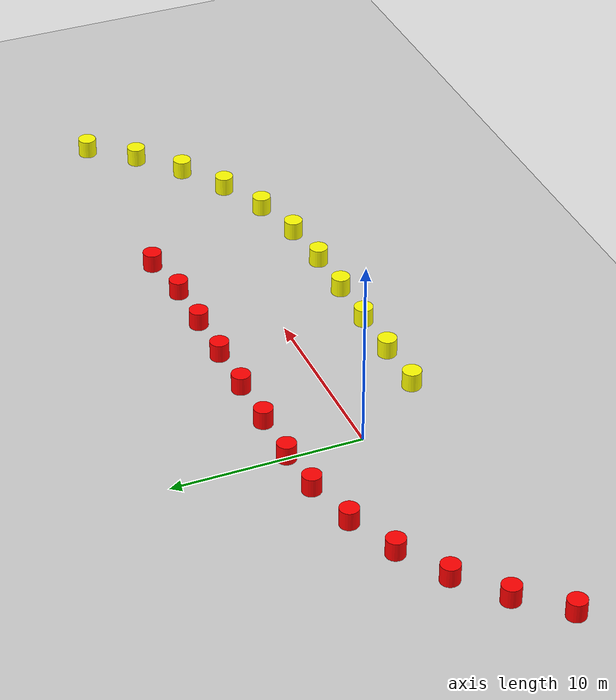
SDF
<sdf version="1.9">
 <world name="empty">
  <model name="ground_plane">
   <static>true</static>
   <link name="link">
    <collision name="collision">
     <geometry><plane><normal>0 0 1</normal><size>1000 1000</size></plane></geometry>
    </collision>
    <visual name="visual">
     <geometry><plane><normal>0 0 1</normal><size>1000 1000</size></plane></geometry>
     <material>
      <ambient>0.8 0.8 0.8 1</ambient>
      <diffuse>0.8 0.8 0.8 1</diffuse>
      <specular>0.8 0.8 0.8 1</specular>
     </material>
    </visual>
    <inertial>
     <mass>1</mass>
     <inertia><ixx>1</ixx><ixy>0</ixy><ixz>0</ixz><iyy>1</iyy><iyz>0</iyz><izz>1</izz></inertia>
    </inertial>
   </link>
  </model>
  <model name="red_cone_0">
   <pose>-2.4492935982947064e-16 4.0 0.5 0 -0 0</pose>
   <link name="cylinder_link">
    <inertial>
     <inertia>
      <ixx>0.14580000000000001</ixx>
      <ixy>0</ixy>
      <ixz>0</ixz>
      <iyy>0.14580000000000001</iyy>
      <iyz>0</iyz>
      <izz>0.125</izz>
     </inertia>
     <mass>1</mass>
    </inertial>
    <collision name="cylinder_collision">
     <geometry><cylinder><radius>0.5</radius><length>1</length></cylinder></geometry>
    </collision>
    <visual name="cylinder_visual">
     <geometry><cylinder><radius>0.5</radius><length>1</length></cylinder></geometry>
     <material><ambient>1 0 0 1</ambient><diffuse>1 0 0 1</diffuse><specular>1 1 1 1</specular></material>
    </visual>
   </link>
   <static>false</static>
  </model>
  <model name="red_cone_1">
   <pose>2.9999999999999996 4.0 0.5 0 -0 0</pose>
   <link name="cylinder_link">
    <inertial>
     <inertia>
      <ixx>0.14580000000000001</ixx>
      <ixy>0</ixy>
      <ixz>0</ixz>
      <iyy>0.14580000000000001</iyy>
      <iyz>0</iyz>
      <izz>0.125</izz>
     </inertia>
     <mass>1</mass>
    </inertial>
    <collision name="cylinder_collision">
     <geometry><cylinder><radius>0.5</radius><length>1</length></cylinder></geometry>
    </collision>
    <visual name="cylinder_visual">
     <geometry><cylinder><radius>0.5</radius><length>1</length></cylinder></geometry>
     <material><ambient>1 0 0 1</ambient><diffuse>1 0 0 1</diffuse><specular>1 1 1 1</specular></material>
    </visual>
   </link>
   <static>false</static>
  </model>
  <model name="red_cone_2">
   <pose>6.0 4.0 0.5 0 -0 0</pose>
   <link name="cylinder_link">
    <inertial>
     <inertia>
      <ixx>0.14580000000000001</ixx>
      <ixy>0</ixy>
      <ixz>0</ixz>
      <iyy>0.14580000000000001</iyy>
      <iyz>0</iyz>
      <izz>0.125</izz>
     </inertia>
     <mass>1</mass>
    </inertial>
    <collision name="cylinder_collision">
     <geometry><cylinder><radius>0.5</radius><length>1</length></cylinder></geometry>
    </collision>
    <visual name="cylinder_visual">
     <geometry><cylinder><radius>0.5</radius><length>1</length></cylinder></geometry>
     <material><ambient>1 0 0 1</ambient><diffuse>1 0 0 1</diffuse><specular>1 1 1 1</specular></material>
    </visual>
   </link>
   <static>false</static>
  </model>
  <model name="red_cone_3">
   <pose>9.0 4.000000000000001 0.5 0 -0 0</pose>
   <link name="cylinder_link">
    <inertial>
     <inertia>
      <ixx>0.14580000000000001</ixx>
      <ixy>0</ixy>
      <ixz>0</ixz>
      <iyy>0.14580000000000001</iyy>
      <iyz>0</iyz>
      <izz>0.125</izz>
     </inertia>
     <mass>1</mass>
    </inertial>
    <collision name="cylinder_collision">
     <geometry><cylinder><radius>0.5</radius><length>1</length></cylinder></geometry>
    </collision>
    <visual name="cylinder_visual">
     <geometry><cylinder><radius>0.5</radius><length>1</length></cylinder></geometry>
     <material><ambient>1 0 0 1</ambient><diffuse>1 0 0 1</diffuse><specular>1 1 1 1</specular></material>
    </visual>
   </link>
   <static>false</static>
  </model>
  <model name="red_cone_4">
   <pose>12.0 4.000000000000001 0.5 0 -0 0</pose>
   <link name="cylinder_link">
    <inertial>
     <inertia>
      <ixx>0.14580000000000001</ixx>
      <ixy>0</ixy>
      <ixz>0</ixz>
      <iyy>0.14580000000000001</iyy>
      <iyz>0</iyz>
      <izz>0.125</izz>
     </inertia>
     <mass>1</mass>
    </inertial>
    <collision name="cylinder_collision">
     <geometry><cylinder><radius>0.5</radius><length>1</length></cylinder></geometry>
    </collision>
    <visual name="cylinder_visual">
     <geometry><cylinder><radius>0.5</radius><length>1</length></cylinder></geometry>
     <material><ambient>1 0 0 1</ambient><diffuse>1 0 0 1</diffuse><specular>1 1 1 1</specular></material>
    </visual>
   </link>
   <static>false</static>
  </model>
  <model name="red_cone_5">
   <pose>15.0 4.000000000000001 0.5 0 -0 0</pose>
   <link name="cylinder_link">
    <inertial>
     <inertia>
      <ixx>0.14580000000000001</ixx>
      <ixy>0</ixy>
      <ixz>0</ixz>
      <iyy>0.14580000000000001</iyy>
      <iyz>0</iyz>
      <izz>0.125</izz>
     </inertia>
     <mass>1</mass>
    </inertial>
    <collision name="cylinder_collision">
     <geometry><cylinder><radius>0.5</radius><length>1</length></cylinder></geometry>
    </collision>
    <visual name="cylinder_visual">
     <geometry><cylinder><radius>0.5</radius><length>1</length></cylinder></geometry>
     <material><ambient>1 0 0 1</ambient><diffuse>1 0 0 1</diffuse><specular>1 1 1 1</specular></material>
    </visual>
   </link>
   <static>false</static>
  </model>
  <model name="red_cone_6">
   <pose>15.0 4.0 0.5 0 -0 0</pose>
   <link name="cylinder_link">
    <inertial>
     <inertia>
      <ixx>0.14580000000000001</ixx>
      <ixy>0</ixy>
      <ixz>0</ixz>
      <iyy>0.14580000000000001</iyy>
      <iyz>0</iyz>
      <izz>0.125</izz>
     </inertia>
     <mass>1</mass>
    </inertial>
    <collision name="cylinder_collision">
     <geometry><cylinder><radius>0.5</radius><length>1</length></cylinder></geometry>
    </collision>
    <visual name="cylinder_visual">
     <geometry><cylinder><radius>0.5</radius><length>1</length></cylinder></geometry>
     <material><ambient>1 0 0 1</ambient><diffuse>1 0 0 1</diffuse><specular>1 1 1 1</specular></material>
    </visual>
   </link>
   <static>false</static>
  </model>
  <model name="red_cone_7">
   <pose>17.962947982891585 4.406561500122885 0.5 0 -0 0</pose>
   <link name="cylinder_link">
    <inertial>
     <inertia>
      <ixx>0.14580000000000001</ixx>
      <ixy>0</ixy>
      <ixz>0</ixz>
      <iyy>0.14580000000000001</iyy>
      <iyz>0</iyz>
      <izz>0.125</izz>
     </inertia>
     <mass>1</mass>
    </inertial>
    <collision name="cylinder_collision">
     <geometry><cylinder><radius>0.5</radius><length>1</length></cylinder></geometry>
    </collision>
    <visual name="cylinder_visual">
     <geometry><cylinder><radius>0.5</radius><length>1</length></cylinder></geometry>
     <material><ambient>1 0 0 1</ambient><diffuse>1 0 0 1</diffuse><specular>1 1 1 1</specular></material>
    </visual>
   </link>
   <static>false</static>
  </model>
  <model name="red_cone_105">
   <pose>-15.242882581717192 -3.6574019466445797 0.5 0 -0 0</pose>
   <link name="cylinder_link">
    <inertial>
     <inertia>
      <ixx>0.14580000000000001</ixx>
      <ixy>0</ixy>
      <ixz>0</ixz>
      <iyy>0.14580000000000001</iyy>
      <iyz>0</iyz>
      <izz>0.125</izz>
     </inertia>
     <mass>1</mass>
    </inertial>
    <collision name="cylinder_collision">
     <geometry><cylinder><radius>0.5</radius><length>1</length></cylinder></geometry>
    </collision>
    <visual name="cylinder_visual">
     <geometry><cylinder><radius>0.5</radius><length>1</length></cylinder></geometry>
     <material><ambient>1 0 0 1</ambient><diffuse>1 0 0 1</diffuse><specular>1 1 1 1</specular></material>
    </visual>
   </link>
   <static>false</static>
  </model>
  <model name="red_cone_106">
   <pose>-13.269764535252907 -1.401715211875299 0.5 0 -0 0</pose>
   <link name="cylinder_link">
    <inertial>
     <inertia>
      <ixx>0.14580000000000001</ixx>
      <ixy>0</ixy>
      <ixz>0</ixz>
      <iyy>0.14580000000000001</iyy>
      <iyz>0</iyz>
      <izz>0.125</izz>
     </inertia>
     <mass>1</mass>
    </inertial>
    <collision name="cylinder_collision">
     <geometry><cylinder><radius>0.5</radius><length>1</length></cylinder></geometry>
    </collision>
    <visual name="cylinder_visual">
     <geometry><cylinder><radius>0.5</radius><length>1</length></cylinder></geometry>
     <material><ambient>1 0 0 1</ambient><diffuse>1 0 0 1</diffuse><specular>1 1 1 1</specular></material>
    </visual>
   </link>
   <static>false</static>
  </model>
  <model name="red_cone_107">
   <pose>-10.966508073130715 0.5156598532565901 0.5 0 -0 0</pose>
   <link name="cylinder_link">
    <inertial>
     <inertia>
      <ixx>0.14580000000000001</ixx>
      <ixy>0</ixy>
      <ixz>0</ixz>
      <iyy>0.14580000000000001</iyy>
      <iyz>0</iyz>
      <izz>0.125</izz>
     </inertia>
     <mass>1</mass>
    </inertial>
    <collision name="cylinder_collision">
     <geometry><cylinder><radius>0.5</radius><length>1</length></cylinder></geometry>
    </collision>
    <visual name="cylinder_visual">
     <geometry><cylinder><radius>0.5</radius><length>1</length></cylinder></geometry>
     <material><ambient>1 0 0 1</ambient><diffuse>1 0 0 1</diffuse><specular>1 1 1 1</specular></material>
    </visual>
   </link>
   <static>false</static>
  </model>
  <model name="red_cone_108">
   <pose>-8.390415903114446 2.0470208826282494 0.5 0 -0 0</pose>
   <link name="cylinder_link">
    <inertial>
     <inertia>
      <ixx>0.14580000000000001</ixx>
      <ixy>0</ixy>
      <ixz>0</ixz>
      <iyy>0.14580000000000001</iyy>
      <iyz>0</iyz>
      <izz>0.125</izz>
     </inertia>
     <mass>1</mass>
    </inertial>
    <collision name="cylinder_collision">
     <geometry><cylinder><radius>0.5</radius><length>1</length></cylinder></geometry>
    </collision>
    <visual name="cylinder_visual">
     <geometry><cylinder><radius>0.5</radius><length>1</length></cylinder></geometry>
     <material><ambient>1 0 0 1</ambient><diffuse>1 0 0 1</diffuse><specular>1 1 1 1</specular></material>
    </visual>
   </link>
   <static>false</static>
  </model>
  <model name="red_cone_109">
   <pose>-5.605578611388875 3.154269151677216 0.5 0 -0 0</pose>
   <link name="cylinder_link">
    <inertial>
     <inertia>
      <ixx>0.14580000000000001</ixx>
      <ixy>0</ixy>
      <ixz>0</ixz>
      <iyy>0.14580000000000001</iyy>
      <iyz>0</iyz>
      <izz>0.125</izz>
     </inertia>
     <mass>1</mass>
    </inertial>
    <collision name="cylinder_collision">
     <geometry><cylinder><radius>0.5</radius><length>1</length></cylinder></geometry>
    </collision>
    <visual name="cylinder_visual">
     <geometry><cylinder><radius>0.5</radius><length>1</length></cylinder></geometry>
     <material><ambient>1 0 0 1</ambient><diffuse>1 0 0 1</diffuse><specular>1 1 1 1</specular></material>
    </visual>
   </link>
   <static>false</static>
  </model>
  <model name="red_cone_110">
   <pose>-2.681280153137478 3.80985743540845 0.5 0 -0 0</pose>
   <link name="cylinder_link">
    <inertial>
     <inertia>
      <ixx>0.14580000000000001</ixx>
      <ixy>0</ixy>
      <ixz>0</ixz>
      <iyy>0.14580000000000001</iyy>
      <iyz>0</iyz>
      <izz>0.125</izz>
     </inertia>
     <mass>1</mass>
    </inertial>
    <collision name="cylinder_collision">
     <geometry><cylinder><radius>0.5</radius><length>1</length></cylinder></geometry>
    </collision>
    <visual name="cylinder_visual">
     <geometry><cylinder><radius>0.5</radius><length>1</length></cylinder></geometry>
     <material><ambient>1 0 0 1</ambient><diffuse>1 0 0 1</diffuse><specular>1 1 1 1</specular></material>
    </visual>
   </link>
   <static>false</static>
  </model>
  <model name="yellow_cone_1">
   <pose>3.0000000000000004 -4.0 0.5 0 -0 0</pose>
   <link name="cylinder_link">
    <inertial>
     <inertia>
      <ixx>0.14580000000000001</ixx>
      <ixy>0</ixy>
      <ixz>0</ixz>
      <iyy>0.14580000000000001</iyy>
      <iyz>0</iyz>
      <izz>0.125</izz>
     </inertia>
     <mass>1</mass>
    </inertial>
    <collision name="cylinder_collision">
     <geometry><cylinder><radius>0.5</radius><length>1</length></cylinder></geometry>
    </collision>
    <visual name="cylinder_visual">
     <geometry><cylinder><radius>0.5</radius><length>1</length></cylinder></geometry>
     <material><ambient>1 1 0 1</ambient><diffuse>1 1 0 1</diffuse><specular>1 1 1 1</specular></material>
    </visual>
   </link>
   <static>false</static>
  </model>
  <model name="yellow_cone_2">
   <pose>6.0 -3.9999999999999996 0.5 0 -0 0</pose>
   <link name="cylinder_link">
    <inertial>
     <inertia>
      <ixx>0.14580000000000001</ixx>
      <ixy>0</ixy>
      <ixz>0</ixz>
      <iyy>0.14580000000000001</iyy>
      <iyz>0</iyz>
      <izz>0.125</izz>
     </inertia>
     <mass>1</mass>
    </inertial>
    <collision name="cylinder_collision">
     <geometry><cylinder><radius>0.5</radius><length>1</length></cylinder></geometry>
    </collision>
    <visual name="cylinder_visual">
     <geometry><cylinder><radius>0.5</radius><length>1</length></cylinder></geometry>
     <material><ambient>1 1 0 1</ambient><diffuse>1 1 0 1</diffuse><specular>1 1 1 1</specular></material>
    </visual>
   </link>
   <static>false</static>
  </model>
  <model name="yellow_cone_3">
   <pose>9.0 -3.9999999999999996 0.5 0 -0 0</pose>
   <link name="cylinder_link">
    <inertial>
     <inertia>
      <ixx>0.14580000000000001</ixx>
      <ixy>0</ixy>
      <ixz>0</ixz>
      <iyy>0.14580000000000001</iyy>
      <iyz>0</iyz>
      <izz>0.125</izz>
     </inertia>
     <mass>1</mass>
    </inertial>
    <collision name="cylinder_collision">
     <geometry><cylinder><radius>0.5</radius><length>1</length></cylinder></geometry>
    </collision>
    <visual name="cylinder_visual">
     <geometry><cylinder><radius>0.5</radius><length>1</length></cylinder></geometry>
     <material><ambient>1 1 0 1</ambient><diffuse>1 1 0 1</diffuse><specular>1 1 1 1</specular></material>
    </visual>
   </link>
   <static>false</static>
  </model>
  <model name="yellow_cone_4">
   <pose>12.0 -3.999999999999999 0.5 0 -0 0</pose>
   <link name="cylinder_link">
    <inertial>
     <inertia>
      <ixx>0.14580000000000001</ixx>
      <ixy>0</ixy>
      <ixz>0</ixz>
      <iyy>0.14580000000000001</iyy>
      <iyz>0</iyz>
      <izz>0.125</izz>
     </inertia>
     <mass>1</mass>
    </inertial>
    <collision name="cylinder_collision">
     <geometry><cylinder><radius>0.5</radius><length>1</length></cylinder></geometry>
    </collision>
    <visual name="cylinder_visual">
     <geometry><cylinder><radius>0.5</radius><length>1</length></cylinder></geometry>
     <material><ambient>1 1 0 1</ambient><diffuse>1 1 0 1</diffuse><specular>1 1 1 1</specular></material>
    </visual>
   </link>
   <static>false</static>
  </model>
  <model name="yellow_cone_5">
   <pose>15.0 -3.999999999999999 0.5 0 -0 0</pose>
   <link name="cylinder_link">
    <inertial>
     <inertia>
      <ixx>0.14580000000000001</ixx>
      <ixy>0</ixy>
      <ixz>0</ixz>
      <iyy>0.14580000000000001</iyy>
      <iyz>0</iyz>
      <izz>0.125</izz>
     </inertia>
     <mass>1</mass>
    </inertial>
    <collision name="cylinder_collision">
     <geometry><cylinder><radius>0.5</radius><length>1</length></cylinder></geometry>
    </collision>
    <visual name="cylinder_visual">
     <geometry><cylinder><radius>0.5</radius><length>1</length></cylinder></geometry>
     <material><ambient>1 1 0 1</ambient><diffuse>1 1 0 1</diffuse><specular>1 1 1 1</specular></material>
    </visual>
   </link>
   <static>false</static>
  </model>
  <model name="yellow_cone_6">
   <pose>15.000000000000002 -4.0 0.5 0 -0 0</pose>
   <link name="cylinder_link">
    <inertial>
     <inertia>
      <ixx>0.14580000000000001</ixx>
      <ixy>0</ixy>
      <ixz>0</ixz>
      <iyy>0.14580000000000001</iyy>
      <iyz>0</iyz>
      <izz>0.125</izz>
     </inertia>
     <mass>1</mass>
    </inertial>
    <collision name="cylinder_collision">
     <geometry><cylinder><radius>0.5</radius><length>1</length></cylinder></geometry>
    </collision>
    <visual name="cylinder_visual">
     <geometry><cylinder><radius>0.5</radius><length>1</length></cylinder></geometry>
     <material><ambient>1 1 0 1</ambient><diffuse>1 1 0 1</diffuse><specular>1 1 1 1</specular></material>
    </visual>
   </link>
   <static>false</static>
  </model>
  <model name="yellow_cone_7">
   <pose>17.987550155373256 -3.76364954024481 0.5 0 -0 0</pose>
   <link name="cylinder_link">
    <inertial>
     <inertia>
      <ixx>0.14580000000000001</ixx>
      <ixy>0</ixy>
      <ixz>0</ixz>
      <iyy>0.14580000000000001</iyy>
      <iyz>0</iyz>
      <izz>0.125</izz>
     </inertia>
     <mass>1</mass>
    </inertial>
    <collision name="cylinder_collision">
     <geometry><cylinder><radius>0.5</radius><length>1</length></cylinder></geometry>
    </collision>
    <visual name="cylinder_visual">
     <geometry><cylinder><radius>0.5</radius><length>1</length></cylinder></geometry>
     <material><ambient>1 1 0 1</ambient><diffuse>1 1 0 1</diffuse><specular>1 1 1 1</specular></material>
    </visual>
   </link>
   <static>false</static>
  </model>
  <model name="yellow_cone_8">
   <pose>20.900773063087126 -3.060478323066235 0.5 0 -0 0</pose>
   <link name="cylinder_link">
    <inertial>
     <inertia>
      <ixx>0.14580000000000001</ixx>
      <ixy>0</ixy>
      <ixz>0</ixz>
      <iyy>0.14580000000000001</iyy>
      <iyz>0</iyz>
      <izz>0.125</izz>
     </inertia>
     <mass>1</mass>
    </inertial>
    <collision name="cylinder_collision">
     <geometry><cylinder><radius>0.5</radius><length>1</length></cylinder></geometry>
    </collision>
    <visual name="cylinder_visual">
     <geometry><cylinder><radius>0.5</radius><length>1</length></cylinder></geometry>
     <material><ambient>1 1 0 1</ambient><diffuse>1 1 0 1</diffuse><specular>1 1 1 1</specular></material>
    </visual>
   </link>
   <static>false</static>
  </model>
  <model name="yellow_cone_9">
   <pose>23.66719066276187 -1.907980542197624 0.5 0 -0 0</pose>
   <link name="cylinder_link">
    <inertial>
     <inertia>
      <ixx>0.14580000000000001</ixx>
      <ixy>0</ixy>
      <ixz>0</ixz>
      <iyy>0.14580000000000001</iyy>
      <iyz>0</iyz>
      <izz>0.125</izz>
     </inertia>
     <mass>1</mass>
    </inertial>
    <collision name="cylinder_collision">
     <geometry><cylinder><radius>0.5</radius><length>1</length></cylinder></geometry>
    </collision>
    <visual name="cylinder_visual">
     <geometry><cylinder><radius>0.5</radius><length>1</length></cylinder></geometry>
     <material><ambient>1 1 0 1</ambient><diffuse>1 1 0 1</diffuse><specular>1 1 1 1</specular></material>
    </visual>
   </link>
   <static>false</static>
  </model>
  <model name="yellow_cone_10">
   <pose>26.217977262654543 -0.33482918504688364 0.5 0 -0 0</pose>
   <link name="cylinder_link">
    <inertial>
     <inertia>
      <ixx>0.14580000000000001</ixx>
      <ixy>0</ixy>
      <ixz>0</ixz>
      <iyy>0.14580000000000001</iyy>
      <iyz>0</iyz>
      <izz>0.125</izz>
     </inertia>
     <mass>1</mass>
    </inertial>
    <collision name="cylinder_collision">
     <geometry><cylinder><radius>0.5</radius><length>1</length></cylinder></geometry>
    </collision>
    <visual name="cylinder_visual">
     <geometry><cylinder><radius>0.5</radius><length>1</length></cylinder></geometry>
     <material><ambient>1 1 0 1</ambient><diffuse>1 1 0 1</diffuse><specular>1 1 1 1</specular></material>
    </visual>
   </link>
   <static>false</static>
  </model>
  <model name="yellow_cone_11">
   <pose>28.489671853752306 1.6198373224357656 0.5 0 -0 0</pose>
   <link name="cylinder_link">
    <inertial>
     <inertia>
      <ixx>0.14580000000000001</ixx>
      <ixy>0</ixy>
      <ixz>0</ixz>
      <iyy>0.14580000000000001</iyy>
      <iyz>0</iyz>
      <izz>0.125</izz>
     </inertia>
     <mass>1</mass>
    </inertial>
    <collision name="cylinder_collision">
     <geometry><cylinder><radius>0.5</radius><length>1</length></cylinder></geometry>
    </collision>
    <visual name="cylinder_visual">
     <geometry><cylinder><radius>0.5</radius><length>1</length></cylinder></geometry>
     <material><ambient>1 1 0 1</ambient><diffuse>1 1 0 1</diffuse><specular>1 1 1 1</specular></material>
    </visual>
   </link>
   <static>false</static>
  </model>
  <model name="yellow_cone_12">
   <pose>30.425756955946802 3.907388840491212 0.5 0 -0 0</pose>
   <link name="cylinder_link">
    <inertial>
     <inertia>
      <ixx>0.14580000000000001</ixx>
      <ixy>0</ixy>
      <ixz>0</ixz>
      <iyy>0.14580000000000001</iyy>
      <iyz>0</iyz>
      <izz>0.125</izz>
     </inertia>
     <mass>1</mass>
    </inertial>
    <collision name="cylinder_collision">
     <geometry><cylinder><radius>0.5</radius><length>1</length></cylinder></geometry>
    </collision>
    <visual name="cylinder_visual">
     <geometry><cylinder><radius>0.5</radius><length>1</length></cylinder></geometry>
     <material><ambient>1 1 0 1</ambient><diffuse>1 1 0 1</diffuse><specular>1 1 1 1</specular></material>
    </visual>
   </link>
   <static>false</static>
  </model>
 </world>
</sdf>
